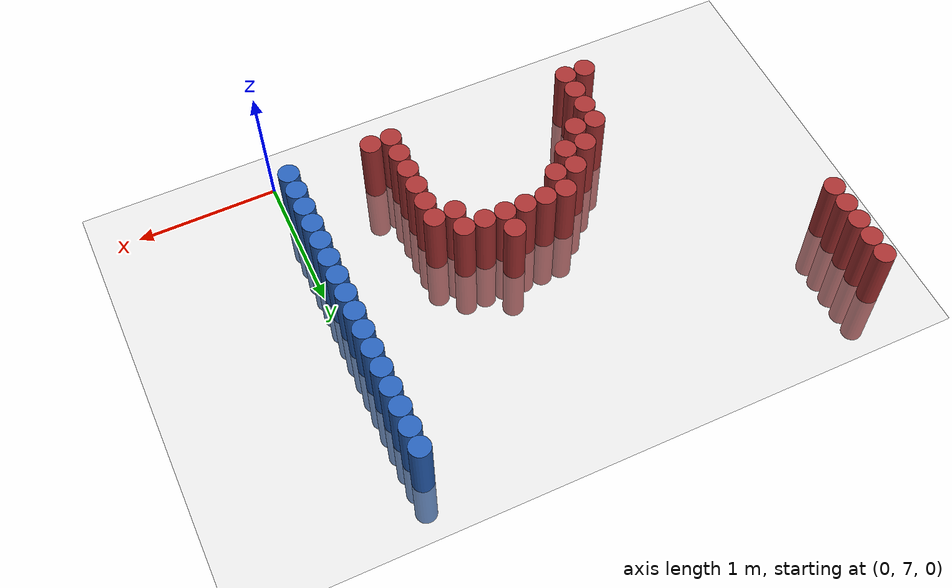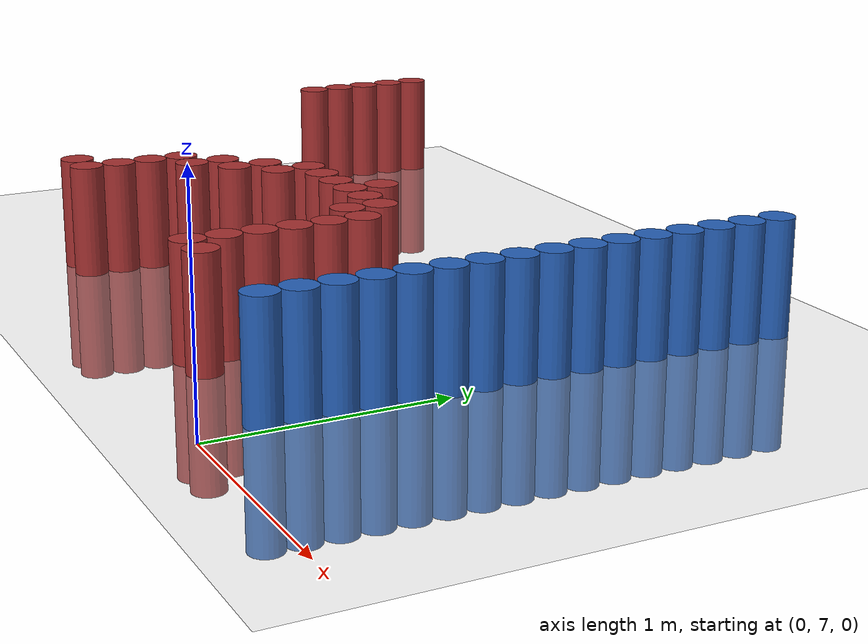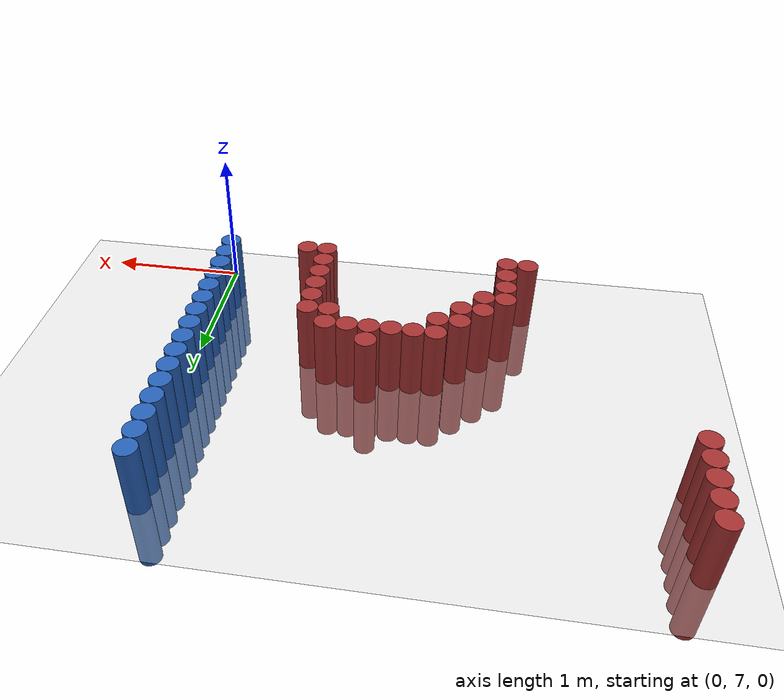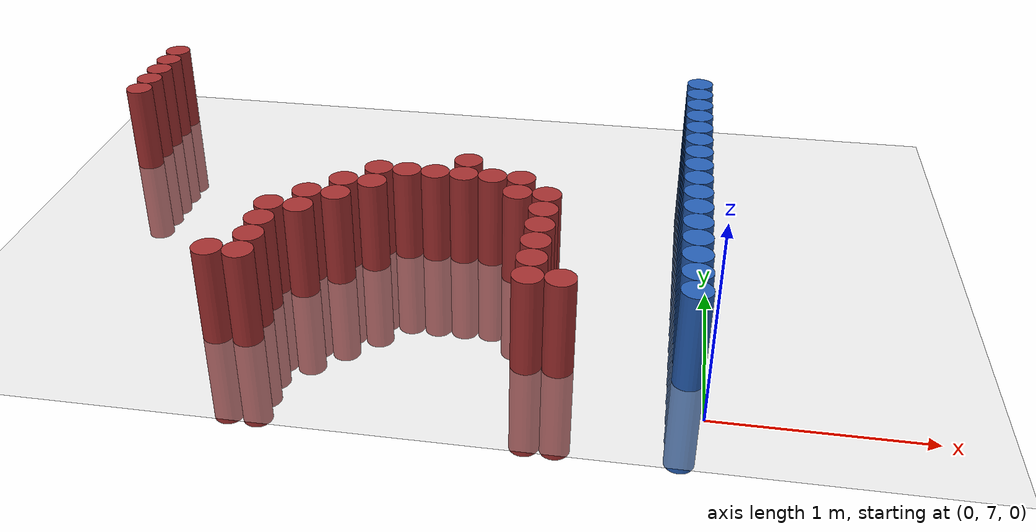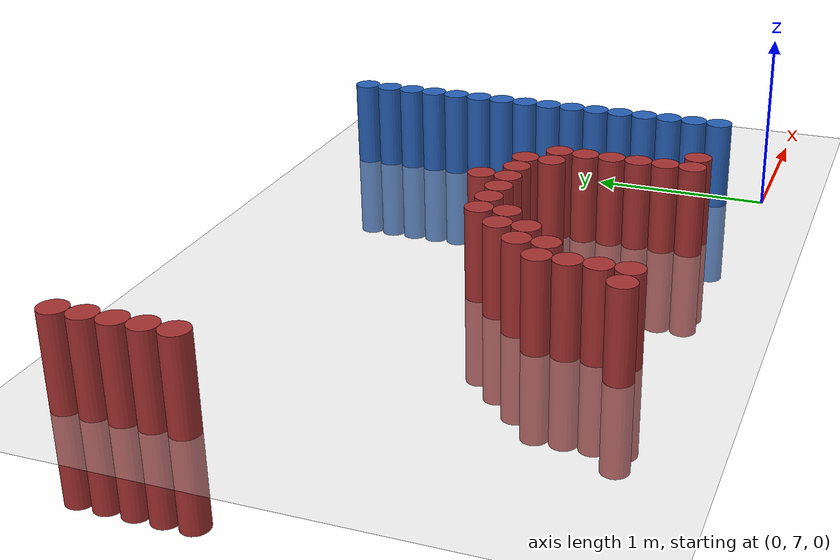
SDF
<sdf version="1.6">
 <world name="default">
  <model name="ground_plane">
   <static>1</static>
   <link name="link">
    <collision name="collision">
     <geometry><plane><normal>0 0 1</normal><size>100 100</size></plane></geometry>
     <surface><friction><ode><mu>100</mu><mu2>50</mu2></ode></friction></surface>
    </collision>
    <visual name="visual">
     <cast_shadows>0</cast_shadows>
     <geometry><plane><normal>0 0 1</normal><size>100 100</size></plane></geometry>
     <material>
      <script><uri>file://media/materials/scripts/gazebo.material</uri><name>Gazebo/Grey</name></script>
     </material>
    </visual>
   </link>
  </model>
  <model name="unit_cylinder_159">
   <static>1</static>
   <pose>-3.375000 8.925000 0.000000 0.000000 0.000000 0.000000</pose>
   <link name="link">
    <inertial>
     <mass>1</mass>
     <inertia><ixx>0.145833</ixx><ixy>0</ixy><ixz>0</ixz><iyy>0.145833</iyy><iyz>0</iyz><izz>0.125</izz></inertia>
    </inertial>
    <collision name="collision">
     <geometry><cylinder><radius>0.075000</radius><length>1</length></cylinder></geometry>
    </collision>
    <visual name="visual">
     <geometry><cylinder><radius>0.075000</radius><length>1</length></cylinder></geometry>
     <material>
      <ambient>0.648000 0.192000 0.192000 1</ambient>
      <diffuse>0.648000 0.192000 0.192000 1</diffuse>
     </material>
     <material>
      <script><name>Gazebo/Grey</name><uri>file://media/materials/scripts/gazebo.material</uri></script>
     </material>
    </visual>
   </link>
  </model>
  <model name="unit_cylinder_160">
   <static>1</static>
   <pose>-3.375000 9.075000 0.000000 0.000000 0.000000 0.000000</pose>
   <link name="link">
    <inertial>
     <mass>1</mass>
     <inertia><ixx>0.145833</ixx><ixy>0</ixy><ixz>0</ixz><iyy>0.145833</iyy><iyz>0</iyz><izz>0.125</izz></inertia>
    </inertial>
    <collision name="collision">
     <geometry><cylinder><radius>0.075000</radius><length>1</length></cylinder></geometry>
    </collision>
    <visual name="visual">
     <geometry><cylinder><radius>0.075000</radius><length>1</length></cylinder></geometry>
     <material>
      <ambient>0.648000 0.192000 0.192000 1</ambient>
      <diffuse>0.648000 0.192000 0.192000 1</diffuse>
     </material>
     <material>
      <script><name>Gazebo/Grey</name><uri>file://media/materials/scripts/gazebo.material</uri></script>
     </material>
    </visual>
   </link>
  </model>
  <model name="unit_cylinder_161">
   <static>1</static>
   <pose>-3.375000 9.225000 0.000000 0.000000 0.000000 0.000000</pose>
   <link name="link">
    <inertial>
     <mass>1</mass>
     <inertia><ixx>0.145833</ixx><ixy>0</ixy><ixz>0</ixz><iyy>0.145833</iyy><iyz>0</iyz><izz>0.125</izz></inertia>
    </inertial>
    <collision name="collision">
     <geometry><cylinder><radius>0.075000</radius><length>1</length></cylinder></geometry>
    </collision>
    <visual name="visual">
     <geometry><cylinder><radius>0.075000</radius><length>1</length></cylinder></geometry>
     <material>
      <ambient>0.648000 0.192000 0.192000 1</ambient>
      <diffuse>0.648000 0.192000 0.192000 1</diffuse>
     </material>
     <material>
      <script><name>Gazebo/Grey</name><uri>file://media/materials/scripts/gazebo.material</uri></script>
     </material>
    </visual>
   </link>
  </model>
  <model name="unit_cylinder_162">
   <static>1</static>
   <pose>-3.375000 9.375000 0.000000 0.000000 0.000000 0.000000</pose>
   <link name="link">
    <inertial>
     <mass>1</mass>
     <inertia><ixx>0.145833</ixx><ixy>0</ixy><ixz>0</ixz><iyy>0.145833</iyy><iyz>0</iyz><izz>0.125</izz></inertia>
    </inertial>
    <collision name="collision">
     <geometry><cylinder><radius>0.075000</radius><length>1</length></cylinder></geometry>
    </collision>
    <visual name="visual">
     <geometry><cylinder><radius>0.075000</radius><length>1</length></cylinder></geometry>
     <material>
      <ambient>0.648000 0.192000 0.192000 1</ambient>
      <diffuse>0.648000 0.192000 0.192000 1</diffuse>
     </material>
     <material>
      <script><name>Gazebo/Grey</name><uri>file://media/materials/scripts/gazebo.material</uri></script>
     </material>
    </visual>
   </link>
  </model>
  <model name="unit_cylinder_163">
   <static>1</static>
   <pose>-3.375000 9.525000 0.000000 0.000000 0.000000 0.000000</pose>
   <link name="link">
    <inertial>
     <mass>1</mass>
     <inertia><ixx>0.145833</ixx><ixy>0</ixy><ixz>0</ixz><iyy>0.145833</iyy><iyz>0</iyz><izz>0.125</izz></inertia>
    </inertial>
    <collision name="collision">
     <geometry><cylinder><radius>0.075000</radius><length>1</length></cylinder></geometry>
    </collision>
    <visual name="visual">
     <geometry><cylinder><radius>0.075000</radius><length>1</length></cylinder></geometry>
     <material>
      <ambient>0.648000 0.192000 0.192000 1</ambient>
      <diffuse>0.648000 0.192000 0.192000 1</diffuse>
     </material>
     <material>
      <script><name>Gazebo/Grey</name><uri>file://media/materials/scripts/gazebo.material</uri></script>
     </material>
    </visual>
   </link>
  </model>
  <model name="unit_cylinder_179">
   <static>1</static>
   <pose>-2.325000 7.275000 0.000000 0.000000 0.000000 0.000000</pose>
   <link name="link">
    <inertial>
     <mass>1</mass>
     <inertia><ixx>0.145833</ixx><ixy>0</ixy><ixz>0</ixz><iyy>0.145833</iyy><iyz>0</iyz><izz>0.125</izz></inertia>
    </inertial>
    <collision name="collision">
     <geometry><cylinder><radius>0.075000</radius><length>1</length></cylinder></geometry>
    </collision>
    <visual name="visual">
     <geometry><cylinder><radius>0.075000</radius><length>1</length></cylinder></geometry>
     <material>
      <ambient>0.648000 0.192000 0.192000 1</ambient>
      <diffuse>0.648000 0.192000 0.192000 1</diffuse>
     </material>
     <material>
      <script><name>Gazebo/Grey</name><uri>file://media/materials/scripts/gazebo.material</uri></script>
     </material>
    </visual>
   </link>
  </model>
  <model name="unit_cylinder_184">
   <static>1</static>
   <pose>-2.175000 7.275000 0.000000 0.000000 0.000000 0.000000</pose>
   <link name="link">
    <inertial>
     <mass>1</mass>
     <inertia><ixx>0.145833</ixx><ixy>0</ixy><ixz>0</ixz><iyy>0.145833</iyy><iyz>0</iyz><izz>0.125</izz></inertia>
    </inertial>
    <collision name="collision">
     <geometry><cylinder><radius>0.075000</radius><length>1</length></cylinder></geometry>
    </collision>
    <visual name="visual">
     <geometry><cylinder><radius>0.075000</radius><length>1</length></cylinder></geometry>
     <material>
      <ambient>0.648000 0.192000 0.192000 1</ambient>
      <diffuse>0.648000 0.192000 0.192000 1</diffuse>
     </material>
     <material>
      <script><name>Gazebo/Grey</name><uri>file://media/materials/scripts/gazebo.material</uri></script>
     </material>
    </visual>
   </link>
  </model>
  <model name="unit_cylinder_185">
   <static>1</static>
   <pose>-2.175000 7.425000 0.000000 0.000000 0.000000 0.000000</pose>
   <link name="link">
    <inertial>
     <mass>1</mass>
     <inertia><ixx>0.145833</ixx><ixy>0</ixy><ixz>0</ixz><iyy>0.145833</iyy><iyz>0</iyz><izz>0.125</izz></inertia>
    </inertial>
    <collision name="collision">
     <geometry><cylinder><radius>0.075000</radius><length>1</length></cylinder></geometry>
    </collision>
    <visual name="visual">
     <geometry><cylinder><radius>0.075000</radius><length>1</length></cylinder></geometry>
     <material>
      <ambient>0.648000 0.192000 0.192000 1</ambient>
      <diffuse>0.648000 0.192000 0.192000 1</diffuse>
     </material>
     <material>
      <script><name>Gazebo/Grey</name><uri>file://media/materials/scripts/gazebo.material</uri></script>
     </material>
    </visual>
   </link>
  </model>
  <model name="unit_cylinder_186">
   <static>1</static>
   <pose>-2.175000 7.575000 0.000000 0.000000 0.000000 0.000000</pose>
   <link name="link">
    <inertial>
     <mass>1</mass>
     <inertia><ixx>0.145833</ixx><ixy>0</ixy><ixz>0</ixz><iyy>0.145833</iyy><iyz>0</iyz><izz>0.125</izz></inertia>
    </inertial>
    <collision name="collision">
     <geometry><cylinder><radius>0.075000</radius><length>1</length></cylinder></geometry>
    </collision>
    <visual name="visual">
     <geometry><cylinder><radius>0.075000</radius><length>1</length></cylinder></geometry>
     <material>
      <ambient>0.648000 0.192000 0.192000 1</ambient>
      <diffuse>0.648000 0.192000 0.192000 1</diffuse>
     </material>
     <material>
      <script><name>Gazebo/Grey</name><uri>file://media/materials/scripts/gazebo.material</uri></script>
     </material>
    </visual>
   </link>
  </model>
  <model name="unit_cylinder_187">
   <static>1</static>
   <pose>-2.175000 7.725000 0.000000 0.000000 0.000000 0.000000</pose>
   <link name="link">
    <inertial>
     <mass>1</mass>
     <inertia><ixx>0.145833</ixx><ixy>0</ixy><ixz>0</ixz><iyy>0.145833</iyy><iyz>0</iyz><izz>0.125</izz></inertia>
    </inertial>
    <collision name="collision">
     <geometry><cylinder><radius>0.075000</radius><length>1</length></cylinder></geometry>
    </collision>
    <visual name="visual">
     <geometry><cylinder><radius>0.075000</radius><length>1</length></cylinder></geometry>
     <material>
      <ambient>0.648000 0.192000 0.192000 1</ambient>
      <diffuse>0.648000 0.192000 0.192000 1</diffuse>
     </material>
     <material>
      <script><name>Gazebo/Grey</name><uri>file://media/materials/scripts/gazebo.material</uri></script>
     </material>
    </visual>
   </link>
  </model>
  <model name="unit_cylinder_193">
   <static>1</static>
   <pose>-2.025000 7.725000 0.000000 0.000000 0.000000 0.000000</pose>
   <link name="link">
    <inertial>
     <mass>1</mass>
     <inertia><ixx>0.145833</ixx><ixy>0</ixy><ixz>0</ixz><iyy>0.145833</iyy><iyz>0</iyz><izz>0.125</izz></inertia>
    </inertial>
    <collision name="collision">
     <geometry><cylinder><radius>0.075000</radius><length>1</length></cylinder></geometry>
    </collision>
    <visual name="visual">
     <geometry><cylinder><radius>0.075000</radius><length>1</length></cylinder></geometry>
     <material>
      <ambient>0.648000 0.192000 0.192000 1</ambient>
      <diffuse>0.648000 0.192000 0.192000 1</diffuse>
     </material>
     <material>
      <script><name>Gazebo/Grey</name><uri>file://media/materials/scripts/gazebo.material</uri></script>
     </material>
    </visual>
   </link>
  </model>
  <model name="unit_cylinder_194">
   <static>1</static>
   <pose>-2.025000 7.875000 0.000000 0.000000 0.000000 0.000000</pose>
   <link name="link">
    <inertial>
     <mass>1</mass>
     <inertia><ixx>0.145833</ixx><ixy>0</ixy><ixz>0</ixz><iyy>0.145833</iyy><iyz>0</iyz><izz>0.125</izz></inertia>
    </inertial>
    <collision name="collision">
     <geometry><cylinder><radius>0.075000</radius><length>1</length></cylinder></geometry>
    </collision>
    <visual name="visual">
     <geometry><cylinder><radius>0.075000</radius><length>1</length></cylinder></geometry>
     <material>
      <ambient>0.648000 0.192000 0.192000 1</ambient>
      <diffuse>0.648000 0.192000 0.192000 1</diffuse>
     </material>
     <material>
      <script><name>Gazebo/Grey</name><uri>file://media/materials/scripts/gazebo.material</uri></script>
     </material>
    </visual>
   </link>
  </model>
  <model name="unit_cylinder_197">
   <static>1</static>
   <pose>-1.875000 7.875000 0.000000 0.000000 0.000000 0.000000</pose>
   <link name="link">
    <inertial>
     <mass>1</mass>
     <inertia><ixx>0.145833</ixx><ixy>0</ixy><ixz>0</ixz><iyy>0.145833</iyy><iyz>0</iyz><izz>0.125</izz></inertia>
    </inertial>
    <collision name="collision">
     <geometry><cylinder><radius>0.075000</radius><length>1</length></cylinder></geometry>
    </collision>
    <visual name="visual">
     <geometry><cylinder><radius>0.075000</radius><length>1</length></cylinder></geometry>
     <material>
      <ambient>0.648000 0.192000 0.192000 1</ambient>
      <diffuse>0.648000 0.192000 0.192000 1</diffuse>
     </material>
     <material>
      <script><name>Gazebo/Grey</name><uri>file://media/materials/scripts/gazebo.material</uri></script>
     </material>
    </visual>
   </link>
  </model>
  <model name="unit_cylinder_198">
   <static>1</static>
   <pose>-1.875000 8.025000 0.000000 0.000000 0.000000 0.000000</pose>
   <link name="link">
    <inertial>
     <mass>1</mass>
     <inertia><ixx>0.145833</ixx><ixy>0</ixy><ixz>0</ixz><iyy>0.145833</iyy><iyz>0</iyz><izz>0.125</izz></inertia>
    </inertial>
    <collision name="collision">
     <geometry><cylinder><radius>0.075000</radius><length>1</length></cylinder></geometry>
    </collision>
    <visual name="visual">
     <geometry><cylinder><radius>0.075000</radius><length>1</length></cylinder></geometry>
     <material>
      <ambient>0.648000 0.192000 0.192000 1</ambient>
      <diffuse>0.648000 0.192000 0.192000 1</diffuse>
     </material>
     <material>
      <script><name>Gazebo/Grey</name><uri>file://media/materials/scripts/gazebo.material</uri></script>
     </material>
    </visual>
   </link>
  </model>
  <model name="unit_cylinder_200">
   <static>1</static>
   <pose>-1.725000 8.025000 0.000000 0.000000 0.000000 0.000000</pose>
   <link name="link">
    <inertial>
     <mass>1</mass>
     <inertia><ixx>0.145833</ixx><ixy>0</ixy><ixz>0</ixz><iyy>0.145833</iyy><iyz>0</iyz><izz>0.125</izz></inertia>
    </inertial>
    <collision name="collision">
     <geometry><cylinder><radius>0.075000</radius><length>1</length></cylinder></geometry>
    </collision>
    <visual name="visual">
     <geometry><cylinder><radius>0.075000</radius><length>1</length></cylinder></geometry>
     <material>
      <ambient>0.648000 0.192000 0.192000 1</ambient>
      <diffuse>0.648000 0.192000 0.192000 1</diffuse>
     </material>
     <material>
      <script><name>Gazebo/Grey</name><uri>file://media/materials/scripts/gazebo.material</uri></script>
     </material>
    </visual>
   </link>
  </model>
  <model name="unit_cylinder_201">
   <static>1</static>
   <pose>-1.725000 8.175000 0.000000 0.000000 0.000000 0.000000</pose>
   <link name="link">
    <inertial>
     <mass>1</mass>
     <inertia><ixx>0.145833</ixx><ixy>0</ixy><ixz>0</ixz><iyy>0.145833</iyy><iyz>0</iyz><izz>0.125</izz></inertia>
    </inertial>
    <collision name="collision">
     <geometry><cylinder><radius>0.075000</radius><length>1</length></cylinder></geometry>
    </collision>
    <visual name="visual">
     <geometry><cylinder><radius>0.075000</radius><length>1</length></cylinder></geometry>
     <material>
      <ambient>0.648000 0.192000 0.192000 1</ambient>
      <diffuse>0.648000 0.192000 0.192000 1</diffuse>
     </material>
     <material>
      <script><name>Gazebo/Grey</name><uri>file://media/materials/scripts/gazebo.material</uri></script>
     </material>
    </visual>
   </link>
  </model>
  <model name="unit_cylinder_203">
   <static>1</static>
   <pose>-1.575000 8.175000 0.000000 0.000000 0.000000 0.000000</pose>
   <link name="link">
    <inertial>
     <mass>1</mass>
     <inertia><ixx>0.145833</ixx><ixy>0</ixy><ixz>0</ixz><iyy>0.145833</iyy><iyz>0</iyz><izz>0.125</izz></inertia>
    </inertial>
    <collision name="collision">
     <geometry><cylinder><radius>0.075000</radius><length>1</length></cylinder></geometry>
    </collision>
    <visual name="visual">
     <geometry><cylinder><radius>0.075000</radius><length>1</length></cylinder></geometry>
     <material>
      <ambient>0.648000 0.192000 0.192000 1</ambient>
      <diffuse>0.648000 0.192000 0.192000 1</diffuse>
     </material>
     <material>
      <script><name>Gazebo/Grey</name><uri>file://media/materials/scripts/gazebo.material</uri></script>
     </material>
    </visual>
   </link>
  </model>
  <model name="unit_cylinder_206">
   <static>1</static>
   <pose>-1.425000 8.175000 0.000000 0.000000 0.000000 0.000000</pose>
   <link name="link">
    <inertial>
     <mass>1</mass>
     <inertia><ixx>0.145833</ixx><ixy>0</ixy><ixz>0</ixz><iyy>0.145833</iyy><iyz>0</iyz><izz>0.125</izz></inertia>
    </inertial>
    <collision name="collision">
     <geometry><cylinder><radius>0.075000</radius><length>1</length></cylinder></geometry>
    </collision>
    <visual name="visual">
     <geometry><cylinder><radius>0.075000</radius><length>1</length></cylinder></geometry>
     <material>
      <ambient>0.648000 0.192000 0.192000 1</ambient>
      <diffuse>0.648000 0.192000 0.192000 1</diffuse>
     </material>
     <material>
      <script><name>Gazebo/Grey</name><uri>file://media/materials/scripts/gazebo.material</uri></script>
     </material>
    </visual>
   </link>
  </model>
  <model name="unit_cylinder_214">
   <static>1</static>
   <pose>-1.275000 8.175000 0.000000 0.000000 0.000000 0.000000</pose>
   <link name="link">
    <inertial>
     <mass>1</mass>
     <inertia><ixx>0.145833</ixx><ixy>0</ixy><ixz>0</ixz><iyy>0.145833</iyy><iyz>0</iyz><izz>0.125</izz></inertia>
    </inertial>
    <collision name="collision">
     <geometry><cylinder><radius>0.075000</radius><length>1</length></cylinder></geometry>
    </collision>
    <visual name="visual">
     <geometry><cylinder><radius>0.075000</radius><length>1</length></cylinder></geometry>
     <material>
      <ambient>0.648000 0.192000 0.192000 1</ambient>
      <diffuse>0.648000 0.192000 0.192000 1</diffuse>
     </material>
     <material>
      <script><name>Gazebo/Grey</name><uri>file://media/materials/scripts/gazebo.material</uri></script>
     </material>
    </visual>
   </link>
  </model>
  <model name="unit_cylinder_215">
   <static>1</static>
   <pose>-1.275000 8.325000 0.000000 0.000000 0.000000 0.000000</pose>
   <link name="link">
    <inertial>
     <mass>1</mass>
     <inertia><ixx>0.145833</ixx><ixy>0</ixy><ixz>0</ixz><iyy>0.145833</iyy><iyz>0</iyz><izz>0.125</izz></inertia>
    </inertial>
    <collision name="collision">
     <geometry><cylinder><radius>0.075000</radius><length>1</length></cylinder></geometry>
    </collision>
    <visual name="visual">
     <geometry><cylinder><radius>0.075000</radius><length>1</length></cylinder></geometry>
     <material>
      <ambient>0.648000 0.192000 0.192000 1</ambient>
      <diffuse>0.648000 0.192000 0.192000 1</diffuse>
     </material>
     <material>
      <script><name>Gazebo/Grey</name><uri>file://media/materials/scripts/gazebo.material</uri></script>
     </material>
    </visual>
   </link>
  </model>
  <model name="unit_cylinder_217">
   <static>1</static>
   <pose>-1.125000 8.175000 0.000000 0.000000 0.000000 0.000000</pose>
   <link name="link">
    <inertial>
     <mass>1</mass>
     <inertia><ixx>0.145833</ixx><ixy>0</ixy><ixz>0</ixz><iyy>0.145833</iyy><iyz>0</iyz><izz>0.125</izz></inertia>
    </inertial>
    <collision name="collision">
     <geometry><cylinder><radius>0.075000</radius><length>1</length></cylinder></geometry>
    </collision>
    <visual name="visual">
     <geometry><cylinder><radius>0.075000</radius><length>1</length></cylinder></geometry>
     <material>
      <ambient>0.648000 0.192000 0.192000 1</ambient>
      <diffuse>0.648000 0.192000 0.192000 1</diffuse>
     </material>
     <material>
      <script><name>Gazebo/Grey</name><uri>file://media/materials/scripts/gazebo.material</uri></script>
     </material>
    </visual>
   </link>
  </model>
  <model name="unit_cylinder_219">
   <static>1</static>
   <pose>-0.975000 8.025000 0.000000 0.000000 0.000000 0.000000</pose>
   <link name="link">
    <inertial>
     <mass>1</mass>
     <inertia><ixx>0.145833</ixx><ixy>0</ixy><ixz>0</ixz><iyy>0.145833</iyy><iyz>0</iyz><izz>0.125</izz></inertia>
    </inertial>
    <collision name="collision">
     <geometry><cylinder><radius>0.075000</radius><length>1</length></cylinder></geometry>
    </collision>
    <visual name="visual">
     <geometry><cylinder><radius>0.075000</radius><length>1</length></cylinder></geometry>
     <material>
      <ambient>0.648000 0.192000 0.192000 1</ambient>
      <diffuse>0.648000 0.192000 0.192000 1</diffuse>
     </material>
     <material>
      <script><name>Gazebo/Grey</name><uri>file://media/materials/scripts/gazebo.material</uri></script>
     </material>
    </visual>
   </link>
  </model>
  <model name="unit_cylinder_220">
   <static>1</static>
   <pose>-0.975000 8.175000 0.000000 0.000000 0.000000 0.000000</pose>
   <link name="link">
    <inertial>
     <mass>1</mass>
     <inertia><ixx>0.145833</ixx><ixy>0</ixy><ixz>0</ixz><iyy>0.145833</iyy><iyz>0</iyz><izz>0.125</izz></inertia>
    </inertial>
    <collision name="collision">
     <geometry><cylinder><radius>0.075000</radius><length>1</length></cylinder></geometry>
    </collision>
    <visual name="visual">
     <geometry><cylinder><radius>0.075000</radius><length>1</length></cylinder></geometry>
     <material>
      <ambient>0.648000 0.192000 0.192000 1</ambient>
      <diffuse>0.648000 0.192000 0.192000 1</diffuse>
     </material>
     <material>
      <script><name>Gazebo/Grey</name><uri>file://media/materials/scripts/gazebo.material</uri></script>
     </material>
    </visual>
   </link>
  </model>
  <model name="unit_cylinder_222">
   <static>1</static>
   <pose>-0.825000 7.275000 0.000000 0.000000 0.000000 0.000000</pose>
   <link name="link">
    <inertial>
     <mass>1</mass>
     <inertia><ixx>0.145833</ixx><ixy>0</ixy><ixz>0</ixz><iyy>0.145833</iyy><iyz>0</iyz><izz>0.125</izz></inertia>
    </inertial>
    <collision name="collision">
     <geometry><cylinder><radius>0.075000</radius><length>1</length></cylinder></geometry>
    </collision>
    <visual name="visual">
     <geometry><cylinder><radius>0.075000</radius><length>1</length></cylinder></geometry>
     <material>
      <ambient>0.648000 0.192000 0.192000 1</ambient>
      <diffuse>0.648000 0.192000 0.192000 1</diffuse>
     </material>
     <material>
      <script><name>Gazebo/Grey</name><uri>file://media/materials/scripts/gazebo.material</uri></script>
     </material>
    </visual>
   </link>
  </model>
  <model name="unit_cylinder_223">
   <static>1</static>
   <pose>-0.825000 7.425000 0.000000 0.000000 0.000000 0.000000</pose>
   <link name="link">
    <inertial>
     <mass>1</mass>
     <inertia><ixx>0.145833</ixx><ixy>0</ixy><ixz>0</ixz><iyy>0.145833</iyy><iyz>0</iyz><izz>0.125</izz></inertia>
    </inertial>
    <collision name="collision">
     <geometry><cylinder><radius>0.075000</radius><length>1</length></cylinder></geometry>
    </collision>
    <visual name="visual">
     <geometry><cylinder><radius>0.075000</radius><length>1</length></cylinder></geometry>
     <material>
      <ambient>0.648000 0.192000 0.192000 1</ambient>
      <diffuse>0.648000 0.192000 0.192000 1</diffuse>
     </material>
     <material>
      <script><name>Gazebo/Grey</name><uri>file://media/materials/scripts/gazebo.material</uri></script>
     </material>
    </visual>
   </link>
  </model>
  <model name="unit_cylinder_224">
   <static>1</static>
   <pose>-0.825000 7.575000 0.000000 0.000000 0.000000 0.000000</pose>
   <link name="link">
    <inertial>
     <mass>1</mass>
     <inertia><ixx>0.145833</ixx><ixy>0</ixy><ixz>0</ixz><iyy>0.145833</iyy><iyz>0</iyz><izz>0.125</izz></inertia>
    </inertial>
    <collision name="collision">
     <geometry><cylinder><radius>0.075000</radius><length>1</length></cylinder></geometry>
    </collision>
    <visual name="visual">
     <geometry><cylinder><radius>0.075000</radius><length>1</length></cylinder></geometry>
     <material>
      <ambient>0.648000 0.192000 0.192000 1</ambient>
      <diffuse>0.648000 0.192000 0.192000 1</diffuse>
     </material>
     <material>
      <script><name>Gazebo/Grey</name><uri>file://media/materials/scripts/gazebo.material</uri></script>
     </material>
    </visual>
   </link>
  </model>
  <model name="unit_cylinder_225">
   <static>1</static>
   <pose>-0.825000 7.725000 0.000000 0.000000 0.000000 0.000000</pose>
   <link name="link">
    <inertial>
     <mass>1</mass>
     <inertia><ixx>0.145833</ixx><ixy>0</ixy><ixz>0</ixz><iyy>0.145833</iyy><iyz>0</iyz><izz>0.125</izz></inertia>
    </inertial>
    <collision name="collision">
     <geometry><cylinder><radius>0.075000</radius><length>1</length></cylinder></geometry>
    </collision>
    <visual name="visual">
     <geometry><cylinder><radius>0.075000</radius><length>1</length></cylinder></geometry>
     <material>
      <ambient>0.648000 0.192000 0.192000 1</ambient>
      <diffuse>0.648000 0.192000 0.192000 1</diffuse>
     </material>
     <material>
      <script><name>Gazebo/Grey</name><uri>file://media/materials/scripts/gazebo.material</uri></script>
     </material>
    </visual>
   </link>
  </model>
  <model name="unit_cylinder_226">
   <static>1</static>
   <pose>-0.825000 7.875000 0.000000 0.000000 0.000000 0.000000</pose>
   <link name="link">
    <inertial>
     <mass>1</mass>
     <inertia><ixx>0.145833</ixx><ixy>0</ixy><ixz>0</ixz><iyy>0.145833</iyy><iyz>0</iyz><izz>0.125</izz></inertia>
    </inertial>
    <collision name="collision">
     <geometry><cylinder><radius>0.075000</radius><length>1</length></cylinder></geometry>
    </collision>
    <visual name="visual">
     <geometry><cylinder><radius>0.075000</radius><length>1</length></cylinder></geometry>
     <material>
      <ambient>0.648000 0.192000 0.192000 1</ambient>
      <diffuse>0.648000 0.192000 0.192000 1</diffuse>
     </material>
     <material>
      <script><name>Gazebo/Grey</name><uri>file://media/materials/scripts/gazebo.material</uri></script>
     </material>
    </visual>
   </link>
  </model>
  <model name="unit_cylinder_227">
   <static>1</static>
   <pose>-0.825000 8.025000 0.000000 0.000000 0.000000 0.000000</pose>
   <link name="link">
    <inertial>
     <mass>1</mass>
     <inertia><ixx>0.145833</ixx><ixy>0</ixy><ixz>0</ixz><iyy>0.145833</iyy><iyz>0</iyz><izz>0.125</izz></inertia>
    </inertial>
    <collision name="collision">
     <geometry><cylinder><radius>0.075000</radius><length>1</length></cylinder></geometry>
    </collision>
    <visual name="visual">
     <geometry><cylinder><radius>0.075000</radius><length>1</length></cylinder></geometry>
     <material>
      <ambient>0.648000 0.192000 0.192000 1</ambient>
      <diffuse>0.648000 0.192000 0.192000 1</diffuse>
     </material>
     <material>
      <script><name>Gazebo/Grey</name><uri>file://media/materials/scripts/gazebo.material</uri></script>
     </material>
    </visual>
   </link>
  </model>
  <model name="unit_cylinder_232">
   <static>1</static>
   <pose>-0.675000 7.275000 0.000000 0.000000 0.000000 0.000000</pose>
   <link name="link">
    <inertial>
     <mass>1</mass>
     <inertia><ixx>0.145833</ixx><ixy>0</ixy><ixz>0</ixz><iyy>0.145833</iyy><iyz>0</iyz><izz>0.125</izz></inertia>
    </inertial>
    <collision name="collision">
     <geometry><cylinder><radius>0.075000</radius><length>1</length></cylinder></geometry>
    </collision>
    <visual name="visual">
     <geometry><cylinder><radius>0.075000</radius><length>1</length></cylinder></geometry>
     <material>
      <ambient>0.648000 0.192000 0.192000 1</ambient>
      <diffuse>0.648000 0.192000 0.192000 1</diffuse>
     </material>
     <material>
      <script><name>Gazebo/Grey</name><uri>file://media/materials/scripts/gazebo.material</uri></script>
     </material>
    </visual>
   </link>
  </model>
  <model name="unit_cylinder_260">
   <static>1</static>
   <pose>-0.075000 7.275000 0.000000 0.000000 0.000000 0.000000</pose>
   <link name="link">
    <inertial>
     <mass>1</mass>
     <inertia><ixx>0.145833</ixx><ixy>0</ixy><ixz>0</ixz><iyy>0.145833</iyy><iyz>0</iyz><izz>0.125</izz></inertia>
    </inertial>
    <collision name="collision">
     <geometry><cylinder><radius>0.075000</radius><length>1</length></cylinder></geometry>
    </collision>
    <visual name="visual">
     <geometry><cylinder><radius>0.075000</radius><length>1</length></cylinder></geometry>
     <material>
      <ambient>0.152000 0.379000 0.720000 1</ambient>
      <diffuse>0.152000 0.379000 0.720000 1</diffuse>
     </material>
     <material>
      <script><name>Gazebo/Grey</name><uri>file://media/materials/scripts/gazebo.material</uri></script>
     </material>
    </visual>
   </link>
  </model>
  <model name="unit_cylinder_261">
   <static>1</static>
   <pose>-0.075000 7.425000 0.000000 0.000000 0.000000 0.000000</pose>
   <link name="link">
    <inertial>
     <mass>1</mass>
     <inertia><ixx>0.145833</ixx><ixy>0</ixy><ixz>0</ixz><iyy>0.145833</iyy><iyz>0</iyz><izz>0.125</izz></inertia>
    </inertial>
    <collision name="collision">
     <geometry><cylinder><radius>0.075000</radius><length>1</length></cylinder></geometry>
    </collision>
    <visual name="visual">
     <geometry><cylinder><radius>0.075000</radius><length>1</length></cylinder></geometry>
     <material>
      <ambient>0.152000 0.379000 0.720000 1</ambient>
      <diffuse>0.152000 0.379000 0.720000 1</diffuse>
     </material>
     <material>
      <script><name>Gazebo/Grey</name><uri>file://media/materials/scripts/gazebo.material</uri></script>
     </material>
    </visual>
   </link>
  </model>
  <model name="unit_cylinder_262">
   <static>1</static>
   <pose>-0.075000 7.575000 0.000000 0.000000 0.000000 0.000000</pose>
   <link name="link">
    <inertial>
     <mass>1</mass>
     <inertia><ixx>0.145833</ixx><ixy>0</ixy><ixz>0</ixz><iyy>0.145833</iyy><iyz>0</iyz><izz>0.125</izz></inertia>
    </inertial>
    <collision name="collision">
     <geometry><cylinder><radius>0.075000</radius><length>1</length></cylinder></geometry>
    </collision>
    <visual name="visual">
     <geometry><cylinder><radius>0.075000</radius><length>1</length></cylinder></geometry>
     <material>
      <ambient>0.152000 0.379000 0.720000 1</ambient>
      <diffuse>0.152000 0.379000 0.720000 1</diffuse>
     </material>
     <material>
      <script><name>Gazebo/Grey</name><uri>file://media/materials/scripts/gazebo.material</uri></script>
     </material>
    </visual>
   </link>
  </model>
  <model name="unit_cylinder_263">
   <static>1</static>
   <pose>-0.075000 7.725000 0.000000 0.000000 0.000000 0.000000</pose>
   <link name="link">
    <inertial>
     <mass>1</mass>
     <inertia><ixx>0.145833</ixx><ixy>0</ixy><ixz>0</ixz><iyy>0.145833</iyy><iyz>0</iyz><izz>0.125</izz></inertia>
    </inertial>
    <collision name="collision">
     <geometry><cylinder><radius>0.075000</radius><length>1</length></cylinder></geometry>
    </collision>
    <visual name="visual">
     <geometry><cylinder><radius>0.075000</radius><length>1</length></cylinder></geometry>
     <material>
      <ambient>0.152000 0.379000 0.720000 1</ambient>
      <diffuse>0.152000 0.379000 0.720000 1</diffuse>
     </material>
     <material>
      <script><name>Gazebo/Grey</name><uri>file://media/materials/scripts/gazebo.material</uri></script>
     </material>
    </visual>
   </link>
  </model>
  <model name="unit_cylinder_264">
   <static>1</static>
   <pose>-0.075000 7.875000 0.000000 0.000000 0.000000 0.000000</pose>
   <link name="link">
    <inertial>
     <mass>1</mass>
     <inertia><ixx>0.145833</ixx><ixy>0</ixy><ixz>0</ixz><iyy>0.145833</iyy><iyz>0</iyz><izz>0.125</izz></inertia>
    </inertial>
    <collision name="collision">
     <geometry><cylinder><radius>0.075000</radius><length>1</length></cylinder></geometry>
    </collision>
    <visual name="visual">
     <geometry><cylinder><radius>0.075000</radius><length>1</length></cylinder></geometry>
     <material>
      <ambient>0.152000 0.379000 0.720000 1</ambient>
      <diffuse>0.152000 0.379000 0.720000 1</diffuse>
     </material>
     <material>
      <script><name>Gazebo/Grey</name><uri>file://media/materials/scripts/gazebo.material</uri></script>
     </material>
    </visual>
   </link>
  </model>
  <model name="unit_cylinder_265">
   <static>1</static>
   <pose>-0.075000 8.025000 0.000000 0.000000 0.000000 0.000000</pose>
   <link name="link">
    <inertial>
     <mass>1</mass>
     <inertia><ixx>0.145833</ixx><ixy>0</ixy><ixz>0</ixz><iyy>0.145833</iyy><iyz>0</iyz><izz>0.125</izz></inertia>
    </inertial>
    <collision name="collision">
     <geometry><cylinder><radius>0.075000</radius><length>1</length></cylinder></geometry>
    </collision>
    <visual name="visual">
     <geometry><cylinder><radius>0.075000</radius><length>1</length></cylinder></geometry>
     <material>
      <ambient>0.152000 0.379000 0.720000 1</ambient>
      <diffuse>0.152000 0.379000 0.720000 1</diffuse>
     </material>
     <material>
      <script><name>Gazebo/Grey</name><uri>file://media/materials/scripts/gazebo.material</uri></script>
     </material>
    </visual>
   </link>
  </model>
  <model name="unit_cylinder_266">
   <static>1</static>
   <pose>-0.075000 8.175000 0.000000 0.000000 0.000000 0.000000</pose>
   <link name="link">
    <inertial>
     <mass>1</mass>
     <inertia><ixx>0.145833</ixx><ixy>0</ixy><ixz>0</ixz><iyy>0.145833</iyy><iyz>0</iyz><izz>0.125</izz></inertia>
    </inertial>
    <collision name="collision">
     <geometry><cylinder><radius>0.075000</radius><length>1</length></cylinder></geometry>
    </collision>
    <visual name="visual">
     <geometry><cylinder><radius>0.075000</radius><length>1</length></cylinder></geometry>
     <material>
      <ambient>0.152000 0.379000 0.720000 1</ambient>
      <diffuse>0.152000 0.379000 0.720000 1</diffuse>
     </material>
     <material>
      <script><name>Gazebo/Grey</name><uri>file://media/materials/scripts/gazebo.material</uri></script>
     </material>
    </visual>
   </link>
  </model>
  <model name="unit_cylinder_267">
   <static>1</static>
   <pose>-0.075000 8.325000 0.000000 0.000000 0.000000 0.000000</pose>
   <link name="link">
    <inertial>
     <mass>1</mass>
     <inertia><ixx>0.145833</ixx><ixy>0</ixy><ixz>0</ixz><iyy>0.145833</iyy><iyz>0</iyz><izz>0.125</izz></inertia>
    </inertial>
    <collision name="collision">
     <geometry><cylinder><radius>0.075000</radius><length>1</length></cylinder></geometry>
    </collision>
    <visual name="visual">
     <geometry><cylinder><radius>0.075000</radius><length>1</length></cylinder></geometry>
     <material>
      <ambient>0.152000 0.379000 0.720000 1</ambient>
      <diffuse>0.152000 0.379000 0.720000 1</diffuse>
     </material>
     <material>
      <script><name>Gazebo/Grey</name><uri>file://media/materials/scripts/gazebo.material</uri></script>
     </material>
    </visual>
   </link>
  </model>
  <model name="unit_cylinder_268">
   <static>1</static>
   <pose>-0.075000 8.475000 0.000000 0.000000 0.000000 0.000000</pose>
   <link name="link">
    <inertial>
     <mass>1</mass>
     <inertia><ixx>0.145833</ixx><ixy>0</ixy><ixz>0</ixz><iyy>0.145833</iyy><iyz>0</iyz><izz>0.125</izz></inertia>
    </inertial>
    <collision name="collision">
     <geometry><cylinder><radius>0.075000</radius><length>1</length></cylinder></geometry>
    </collision>
    <visual name="visual">
     <geometry><cylinder><radius>0.075000</radius><length>1</length></cylinder></geometry>
     <material>
      <ambient>0.152000 0.379000 0.720000 1</ambient>
      <diffuse>0.152000 0.379000 0.720000 1</diffuse>
     </material>
     <material>
      <script><name>Gazebo/Grey</name><uri>file://media/materials/scripts/gazebo.material</uri></script>
     </material>
    </visual>
   </link>
  </model>
  <model name="unit_cylinder_269">
   <static>1</static>
   <pose>-0.075000 8.625000 0.000000 0.000000 0.000000 0.000000</pose>
   <link name="link">
    <inertial>
     <mass>1</mass>
     <inertia><ixx>0.145833</ixx><ixy>0</ixy><ixz>0</ixz><iyy>0.145833</iyy><iyz>0</iyz><izz>0.125</izz></inertia>
    </inertial>
    <collision name="collision">
     <geometry><cylinder><radius>0.075000</radius><length>1</length></cylinder></geometry>
    </collision>
    <visual name="visual">
     <geometry><cylinder><radius>0.075000</radius><length>1</length></cylinder></geometry>
     <material>
      <ambient>0.152000 0.379000 0.720000 1</ambient>
      <diffuse>0.152000 0.379000 0.720000 1</diffuse>
     </material>
     <material>
      <script><name>Gazebo/Grey</name><uri>file://media/materials/scripts/gazebo.material</uri></script>
     </material>
    </visual>
   </link>
  </model>
  <model name="unit_cylinder_270">
   <static>1</static>
   <pose>-0.075000 8.775000 0.000000 0.000000 0.000000 0.000000</pose>
   <link name="link">
    <inertial>
     <mass>1</mass>
     <inertia><ixx>0.145833</ixx><ixy>0</ixy><ixz>0</ixz><iyy>0.145833</iyy><iyz>0</iyz><izz>0.125</izz></inertia>
    </inertial>
    <collision name="collision">
     <geometry><cylinder><radius>0.075000</radius><length>1</length></cylinder></geometry>
    </collision>
    <visual name="visual">
     <geometry><cylinder><radius>0.075000</radius><length>1</length></cylinder></geometry>
     <material>
      <ambient>0.152000 0.379000 0.720000 1</ambient>
      <diffuse>0.152000 0.379000 0.720000 1</diffuse>
     </material>
     <material>
      <script><name>Gazebo/Grey</name><uri>file://media/materials/scripts/gazebo.material</uri></script>
     </material>
    </visual>
   </link>
  </model>
  <model name="unit_cylinder_271">
   <static>1</static>
   <pose>-0.075000 8.925000 0.000000 0.000000 0.000000 0.000000</pose>
   <link name="link">
    <inertial>
     <mass>1</mass>
     <inertia><ixx>0.145833</ixx><ixy>0</ixy><ixz>0</ixz><iyy>0.145833</iyy><iyz>0</iyz><izz>0.125</izz></inertia>
    </inertial>
    <collision name="collision">
     <geometry><cylinder><radius>0.075000</radius><length>1</length></cylinder></geometry>
    </collision>
    <visual name="visual">
     <geometry><cylinder><radius>0.075000</radius><length>1</length></cylinder></geometry>
     <material>
      <ambient>0.152000 0.379000 0.720000 1</ambient>
      <diffuse>0.152000 0.379000 0.720000 1</diffuse>
     </material>
     <material>
      <script><name>Gazebo/Grey</name><uri>file://media/materials/scripts/gazebo.material</uri></script>
     </material>
    </visual>
   </link>
  </model>
  <model name="unit_cylinder_272">
   <static>1</static>
   <pose>-0.075000 9.075000 0.000000 0.000000 0.000000 0.000000</pose>
   <link name="link">
    <inertial>
     <mass>1</mass>
     <inertia><ixx>0.145833</ixx><ixy>0</ixy><ixz>0</ixz><iyy>0.145833</iyy><iyz>0</iyz><izz>0.125</izz></inertia>
    </inertial>
    <collision name="collision">
     <geometry><cylinder><radius>0.075000</radius><length>1</length></cylinder></geometry>
    </collision>
    <visual name="visual">
     <geometry><cylinder><radius>0.075000</radius><length>1</length></cylinder></geometry>
     <material>
      <ambient>0.152000 0.379000 0.720000 1</ambient>
      <diffuse>0.152000 0.379000 0.720000 1</diffuse>
     </material>
     <material>
      <script><name>Gazebo/Grey</name><uri>file://media/materials/scripts/gazebo.material</uri></script>
     </material>
    </visual>
   </link>
  </model>
  <model name="unit_cylinder_273">
   <static>1</static>
   <pose>-0.075000 9.225000 0.000000 0.000000 0.000000 0.000000</pose>
   <link name="link">
    <inertial>
     <mass>1</mass>
     <inertia><ixx>0.145833</ixx><ixy>0</ixy><ixz>0</ixz><iyy>0.145833</iyy><iyz>0</iyz><izz>0.125</izz></inertia>
    </inertial>
    <collision name="collision">
     <geometry><cylinder><radius>0.075000</radius><length>1</length></cylinder></geometry>
    </collision>
    <visual name="visual">
     <geometry><cylinder><radius>0.075000</radius><length>1</length></cylinder></geometry>
     <material>
      <ambient>0.152000 0.379000 0.720000 1</ambient>
      <diffuse>0.152000 0.379000 0.720000 1</diffuse>
     </material>
     <material>
      <script><name>Gazebo/Grey</name><uri>file://media/materials/scripts/gazebo.material</uri></script>
     </material>
    </visual>
   </link>
  </model>
  <model name="unit_cylinder_274">
   <static>1</static>
   <pose>-0.075000 9.375000 0.000000 0.000000 0.000000 0.000000</pose>
   <link name="link">
    <inertial>
     <mass>1</mass>
     <inertia><ixx>0.145833</ixx><ixy>0</ixy><ixz>0</ixz><iyy>0.145833</iyy><iyz>0</iyz><izz>0.125</izz></inertia>
    </inertial>
    <collision name="collision">
     <geometry><cylinder><radius>0.075000</radius><length>1</length></cylinder></geometry>
    </collision>
    <visual name="visual">
     <geometry><cylinder><radius>0.075000</radius><length>1</length></cylinder></geometry>
     <material>
      <ambient>0.152000 0.379000 0.720000 1</ambient>
      <diffuse>0.152000 0.379000 0.720000 1</diffuse>
     </material>
     <material>
      <script><name>Gazebo/Grey</name><uri>file://media/materials/scripts/gazebo.material</uri></script>
     </material>
    </visual>
   </link>
  </model>
  <model name="unit_cylinder_275">
   <static>1</static>
   <pose>-0.075000 9.525000 0.000000 0.000000 0.000000 0.000000</pose>
   <link name="link">
    <inertial>
     <mass>1</mass>
     <inertia><ixx>0.145833</ixx><ixy>0</ixy><ixz>0</ixz><iyy>0.145833</iyy><iyz>0</iyz><izz>0.125</izz></inertia>
    </inertial>
    <collision name="collision">
     <geometry><cylinder><radius>0.075000</radius><length>1</length></cylinder></geometry>
    </collision>
    <visual name="visual">
     <geometry><cylinder><radius>0.075000</radius><length>1</length></cylinder></geometry>
     <material>
      <ambient>0.152000 0.379000 0.720000 1</ambient>
      <diffuse>0.152000 0.379000 0.720000 1</diffuse>
     </material>
     <material>
      <script><name>Gazebo/Grey</name><uri>file://media/materials/scripts/gazebo.material</uri></script>
     </material>
    </visual>
   </link>
  </model>
 </world>
</sdf>
